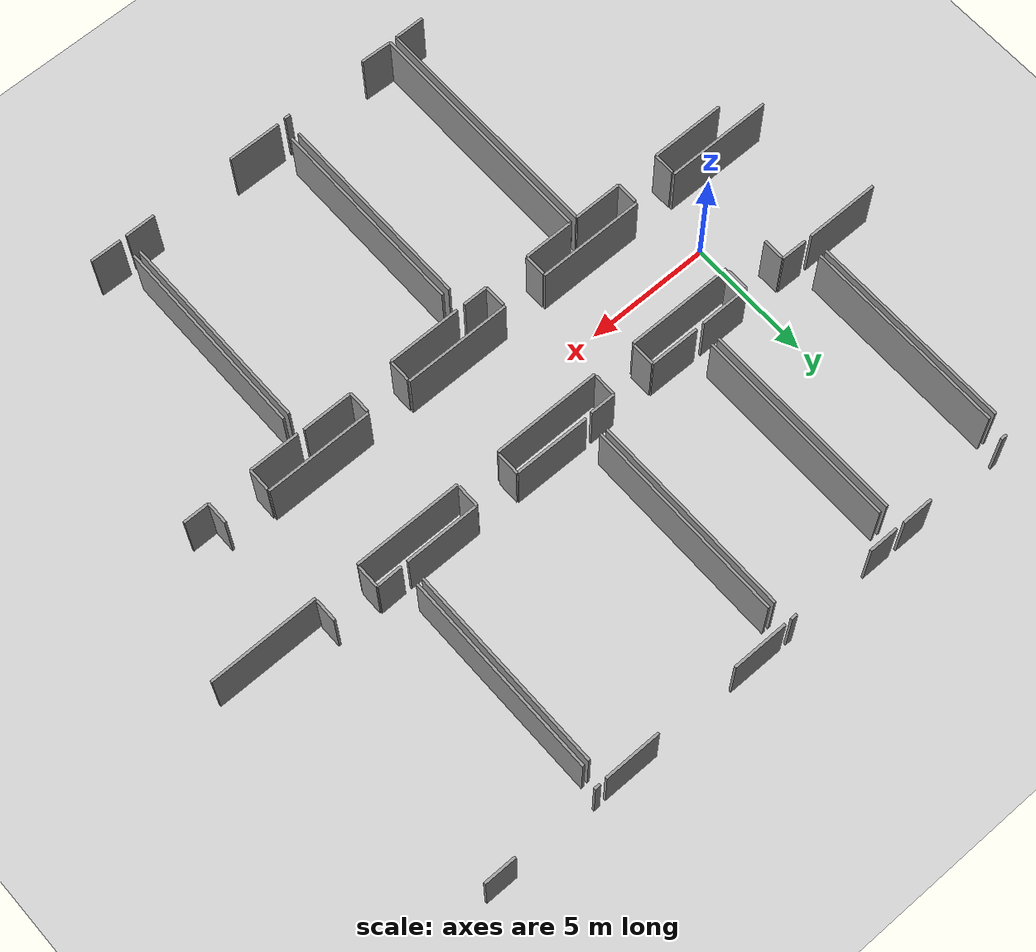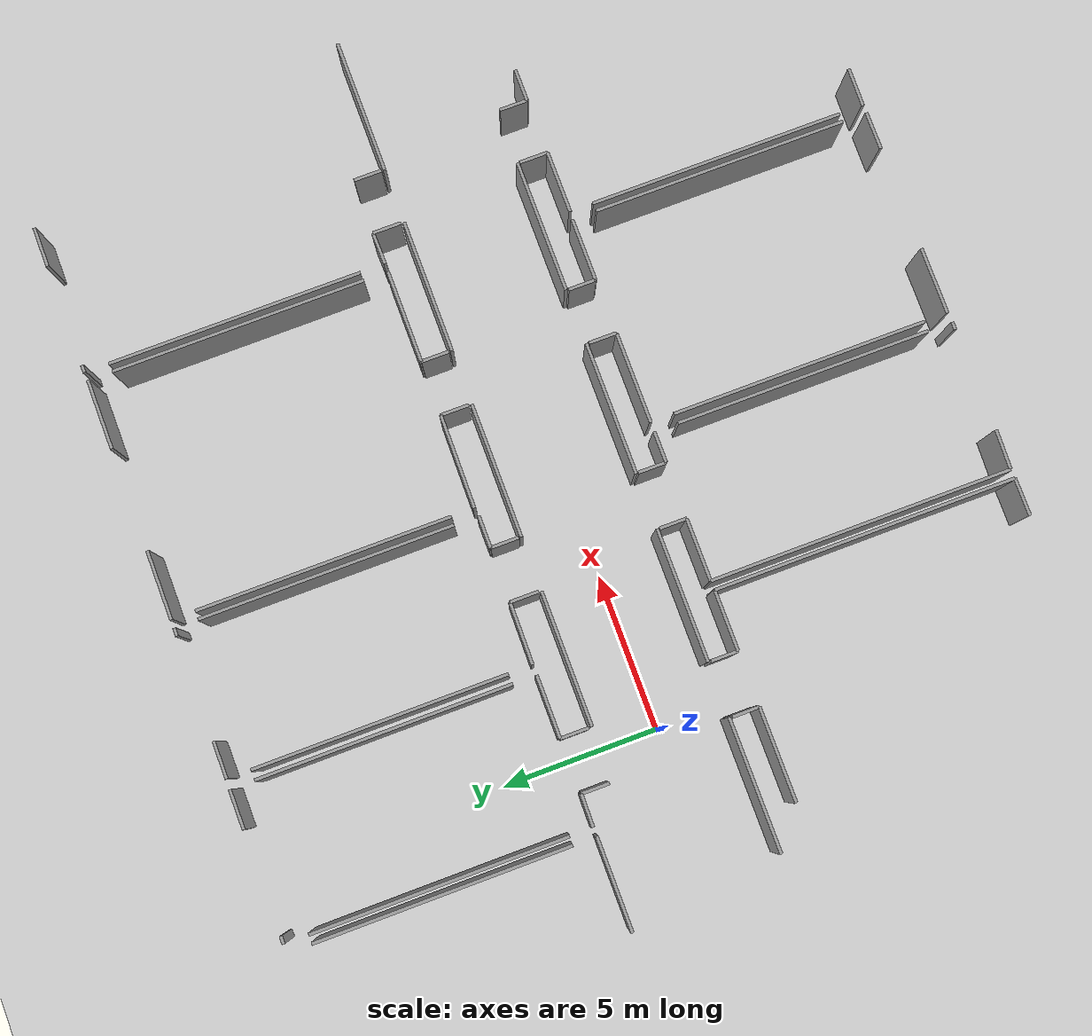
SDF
<sdf version="1.6">
 <world name="default">
  <model name="ground_plane">
   <static>1</static>
   <link name="link">
    <collision name="collision">
     <geometry><plane><normal>0 0 1</normal><size>100 100</size></plane></geometry>
     <surface><friction><ode><mu>100</mu><mu2>50</mu2></ode></friction></surface>
    </collision>
    <visual name="visual">
     <cast_shadows>0</cast_shadows>
     <geometry><plane><normal>0 0 1</normal><size>100 100</size></plane></geometry>
     <material>
      <script><uri>file://media/materials/scripts/gazebo.material</uri><name>Gazebo/Grey</name></script>
     </material>
    </visual>
   </link>
  </model>
  <model name="50052753">
   <static>1</static>
   <link name="Wall_114">
    <collision name="Wall_114_Collision">
     <geometry><box><size>8.09257720581 0.1 2.5</size></box></geometry>
     <pose>4.04628860291 0 1.25 0 0 0</pose>
    </collision>
    <visual name="Wall_114_Visual">
     <pose>4.04628860291 0 1.25 0 0 0</pose>
     <geometry><box><size>8.09257720581 0.1 2.5</size></box></geometry>
     <material>
      <script><uri>file://media/materials/scripts/gazebo.material</uri><name>Gazebo/Grey</name></script>
      <ambient>1 1 1 1</ambient>
     </material>
    </visual>
    <pose>36.7334124049 -0.778242200136 0 0 0 -1.57079632679</pose>
   </link>
   <link name="Wall_115">
    <collision name="Wall_115_Collision">
     <geometry><box><size>2.95123142399 0.1 2.5</size></box></geometry>
     <pose>1.47561571199 0 1.25 0 0 0</pose>
    </collision>
    <visual name="Wall_115_Visual">
     <pose>1.47561571199 0 1.25 0 0 0</pose>
     <geometry><box><size>2.95123142399 0.1 2.5</size></box></geometry>
     <material>
      <script><uri>file://media/materials/scripts/gazebo.material</uri><name>Gazebo/Grey</name></script>
      <ambient>1 1 1 1</ambient>
     </material>
    </visual>
    <pose>36.7334124049 -9.61899748197 0 0 0 3.14159265359</pose>
   </link>
   <link name="Wall_119">
    <collision name="Wall_119_Collision">
     <geometry><box><size>8.09752446674 0.1 2.5</size></box></geometry>
     <pose>4.04876223337 0 1.25 0 0 0</pose>
    </collision>
    <visual name="Wall_119_Visual">
     <pose>4.04876223337 0 1.25 0 0 0</pose>
     <geometry><box><size>8.09752446674 0.1 2.5</size></box></geometry>
     <material>
      <script><uri>file://media/materials/scripts/gazebo.material</uri><name>Gazebo/Grey</name></script>
      <ambient>1 1 1 1</ambient>
     </material>
    </visual>
    <pose>37.0086830772 -8.87716204817 0 0 0 1.57079632679</pose>
   </link>
   <link name="Wall_120">
    <collision name="Wall_120_Collision">
     <geometry><box><size>0.247616752187 0.1 2.5</size></box></geometry>
     <pose>0.123808376093 0 1.25 0 0 0</pose>
    </collision>
    <visual name="Wall_120_Visual">
     <pose>0.123808376093 0 1.25 0 0 0</pose>
     <geometry><box><size>0.247616752187 0.1 2.5</size></box></geometry>
     <material>
      <script><uri>file://media/materials/scripts/gazebo.material</uri><name>Gazebo/Grey</name></script>
      <ambient>1 1 1 1</ambient>
     </material>
    </visual>
    <pose>37.0086830772 -0.0109093446148 0 0 0 0.0</pose>
   </link>
   <link name="Wall_121">
    <collision name="Wall_121_Collision">
     <geometry><box><size>1.24747087142 0.1 2.5</size></box></geometry>
     <pose>0.623735435708 0 1.25 0 0 0</pose>
    </collision>
    <visual name="Wall_121_Visual">
     <pose>0.623735435708 0 1.25 0 0 0</pose>
     <geometry><box><size>1.24747087142 0.1 2.5</size></box></geometry>
     <material>
      <script><uri>file://media/materials/scripts/gazebo.material</uri><name>Gazebo/Grey</name></script>
      <ambient>1 1 1 1</ambient>
     </material>
    </visual>
    <pose>40.4984048255 -0.0109093446148 0 0 0 0.0</pose>
   </link>
   <link name="Wall_122">
    <collision name="Wall_122_Collision">
     <geometry><box><size>8.07240760356 0.1 2.5</size></box></geometry>
     <pose>4.03620380178 0 1.25 0 0 0</pose>
    </collision>
    <visual name="Wall_122_Visual">
     <pose>4.03620380178 0 1.25 0 0 0</pose>
     <geometry><box><size>8.07240760356 0.1 2.5</size></box></geometry>
     <material>
      <script><uri>file://media/materials/scripts/gazebo.material</uri><name>Gazebo/Grey</name></script>
      <ambient>1 1 1 1</ambient>
     </material>
    </visual>
    <pose>41.7458756969 -0.779637581424 0 0 0 -1.57079632679</pose>
   </link>
   <link name="Wall_123">
    <collision name="Wall_123_Collision">
     <geometry><box><size>1.98626183696 0.1 2.5</size></box></geometry>
     <pose>0.993130918478 0 1.25 0 0 0</pose>
    </collision>
    <visual name="Wall_123_Visual">
     <pose>0.993130918478 0 1.25 0 0 0</pose>
     <geometry><box><size>1.98626183696 0.1 2.5</size></box></geometry>
     <material>
      <script><uri>file://media/materials/scripts/gazebo.material</uri><name>Gazebo/Grey</name></script>
      <ambient>1 1 1 1</ambient>
     </material>
    </visual>
    <pose>41.7458756969 -9.60643905038 0 0 0 3.14159265359</pose>
   </link>
   <link name="Wall_124">
    <collision name="Wall_124_Collision">
     <geometry><box><size>0.903953368894 0.1 2.5</size></box></geometry>
     <pose>0.451976684447 0 1.25 0 0 0</pose>
    </collision>
    <visual name="Wall_124_Visual">
     <pose>0.451976684447 0 1.25 0 0 0</pose>
     <geometry><box><size>0.903953368894 0.1 2.5</size></box></geometry>
     <material>
      <script><uri>file://media/materials/scripts/gazebo.material</uri><name>Gazebo/Grey</name></script>
      <ambient>1 1 1 1</ambient>
     </material>
    </visual>
    <pose>39.7596138599 -9.60643905038 0 0 0 -1.57079632679</pose>
   </link>
   <link name="Wall_125">
    <collision name="Wall_125_Collision">
     <geometry><box><size>0.884671736552 0.1 2.5</size></box></geometry>
     <pose>0.442335868276 0 1.25 0 0 0</pose>
    </collision>
    <visual name="Wall_125_Visual">
     <pose>0.442335868276 0 1.25 0 0 0</pose>
     <geometry><box><size>0.884671736552 0.1 2.5</size></box></geometry>
     <material>
      <script><uri>file://media/materials/scripts/gazebo.material</uri><name>Gazebo/Grey</name></script>
      <ambient>1 1 1 1</ambient>
     </material>
    </visual>
    <pose>38.0438022872 -10.5103924193 0 0 0 1.57079632679</pose>
   </link>
   <link name="Wall_126">
    <collision name="Wall_126_Collision">
     <geometry><box><size>1.03522200074 0.1 2.5</size></box></geometry>
     <pose>0.517611000372 0 1.25 0 0 0</pose>
    </collision>
    <visual name="Wall_126_Visual">
     <pose>0.517611000372 0 1.25 0 0 0</pose>
     <geometry><box><size>1.03522200074 0.1 2.5</size></box></geometry>
     <material>
      <script><uri>file://media/materials/scripts/gazebo.material</uri><name>Gazebo/Grey</name></script>
      <ambient>1 1 1 1</ambient>
     </material>
    </visual>
    <pose>38.0438022872 -9.62572068272 0 0 0 3.12750044927</pose>
   </link>
   <link name="Wall_127">
    <collision name="Wall_127_Collision">
     <geometry><box><size>8.07012425236 0.1 2.5</size></box></geometry>
     <pose>4.03506212618 0 1.25 0 0 0</pose>
    </collision>
    <visual name="Wall_127_Visual">
     <pose>4.03506212618 0 1.25 0 0 0</pose>
     <geometry><box><size>8.07012425236 0.1 2.5</size></box></geometry>
     <material>
      <script><uri>file://media/materials/scripts/gazebo.material</uri><name>Gazebo/Grey</name></script>
      <ambient>1 1 1 1</ambient>
     </material>
    </visual>
    <pose>42.0649106005 -8.84202381028 0 0 0 1.57079632679</pose>
   </link>
   <link name="Wall_128">
    <collision name="Wall_128_Collision">
     <geometry><box><size>1.17503789729 0.1 2.5</size></box></geometry>
     <pose>0.587518948644 0 1.25 0 0 0</pose>
    </collision>
    <visual name="Wall_128_Visual">
     <pose>0.587518948644 0 1.25 0 0 0</pose>
     <geometry><box><size>1.17503789729 0.1 2.5</size></box></geometry>
     <material>
      <script><uri>file://media/materials/scripts/gazebo.material</uri><name>Gazebo/Grey</name></script>
      <ambient>1 1 1 1</ambient>
     </material>
    </visual>
    <pose>42.0649106005 -0.0279076257587 0 0 0 0.0</pose>
   </link>
   <link name="Wall_129">
    <collision name="Wall_129_Collision">
     <geometry><box><size>0.25383254156 0.1 2.5</size></box></geometry>
     <pose>0.12691627078 0 1.25 0 0 0</pose>
    </collision>
    <visual name="Wall_129_Visual">
     <pose>0.12691627078 0 1.25 0 0 0</pose>
     <geometry><box><size>0.25383254156 0.1 2.5</size></box></geometry>
     <material>
      <script><uri>file://media/materials/scripts/gazebo.material</uri><name>Gazebo/Grey</name></script>
      <ambient>1 1 1 1</ambient>
     </material>
    </visual>
    <pose>46.5255640195 -0.0279076257587 0 0 0 0.0</pose>
   </link>
   <link name="Wall_130">
    <collision name="Wall_130_Collision">
     <geometry><box><size>8.07963821569 0.1 2.5</size></box></geometry>
     <pose>4.03981910784 0 1.25 0 0 0</pose>
    </collision>
    <visual name="Wall_130_Visual">
     <pose>4.03981910784 0 1.25 0 0 0</pose>
     <geometry><box><size>8.07963821569 0.1 2.5</size></box></geometry>
     <material>
      <script><uri>file://media/materials/scripts/gazebo.material</uri><name>Gazebo/Grey</name></script>
      <ambient>1 1 1 1</ambient>
     </material>
    </visual>
    <pose>46.779396561 -0.772406969295 0 0 0 -1.57079632679</pose>
   </link>
   <link name="Wall_131">
    <collision name="Wall_131_Collision">
     <geometry><box><size>1.02129224993 0.1 2.5</size></box></geometry>
     <pose>0.510646124963 0 1.25 0 0 0</pose>
    </collision>
    <visual name="Wall_131_Visual">
     <pose>0.510646124963 0 1.25 0 0 0</pose>
     <geometry><box><size>1.02129224993 0.1 2.5</size></box></geometry>
     <material>
      <script><uri>file://media/materials/scripts/gazebo.material</uri><name>Gazebo/Grey</name></script>
      <ambient>1 1 1 1</ambient>
     </material>
    </visual>
    <pose>46.779396561 -9.63612261596 0 0 0 3.14159265359</pose>
   </link>
   <link name="Wall_132">
    <collision name="Wall_132_Collision">
     <geometry><box><size>0.892409760058 0.1 2.5</size></box></geometry>
     <pose>0.446204880029 0 1.25 0 0 0</pose>
    </collision>
    <visual name="Wall_132_Visual">
     <pose>0.446204880029 0 1.25 0 0 0</pose>
     <geometry><box><size>0.892409760058 0.1 2.5</size></box></geometry>
     <material>
      <script><uri>file://media/materials/scripts/gazebo.material</uri><name>Gazebo/Grey</name></script>
      <ambient>1 1 1 1</ambient>
     </material>
    </visual>
    <pose>45.7581043111 -9.63612261596 0 0 0 -1.57079632679</pose>
   </link>
   <link name="Wall_133">
    <collision name="Wall_133_Collision">
     <geometry><box><size>0.909534894046 0.1 2.5</size></box></geometry>
     <pose>0.454767447023 0 1.25 0 0 0</pose>
    </collision>
    <visual name="Wall_133_Visual">
     <pose>0.454767447023 0 1.25 0 0 0</pose>
     <geometry><box><size>0.909534894046 0.1 2.5</size></box></geometry>
     <material>
      <script><uri>file://media/materials/scripts/gazebo.material</uri><name>Gazebo/Grey</name></script>
      <ambient>1 1 1 1</ambient>
     </material>
    </visual>
    <pose>44.0407705042 -10.528532376 0 0 0 1.57079632679</pose>
   </link>
   <link name="Wall_134">
    <collision name="Wall_134_Collision">
     <geometry><box><size>1.9759527486 0.1 2.5</size></box></geometry>
     <pose>0.9879763743 0 1.25 0 0 0</pose>
    </collision>
    <visual name="Wall_134_Visual">
     <pose>0.9879763743 0 1.25 0 0 0</pose>
     <geometry><box><size>1.9759527486 0.1 2.5</size></box></geometry>
     <material>
      <script><uri>file://media/materials/scripts/gazebo.material</uri><name>Gazebo/Grey</name></script>
      <ambient>1 1 1 1</ambient>
     </material>
    </visual>
    <pose>44.0407705042 -9.61899748197 0 0 0 3.13189855563</pose>
   </link>
   <link name="Wall_135">
    <collision name="Wall_135_Collision">
     <geometry><box><size>8.09346517572 0.1 2.5</size></box></geometry>
     <pose>4.04673258786 0 1.25 0 0 0</pose>
    </collision>
    <visual name="Wall_135_Visual">
     <pose>4.04673258786 0 1.25 0 0 0</pose>
     <geometry><box><size>8.09346517572 0.1 2.5</size></box></geometry>
     <material>
      <script><uri>file://media/materials/scripts/gazebo.material</uri><name>Gazebo/Grey</name></script>
      <ambient>1 1 1 1</ambient>
     </material>
    </visual>
    <pose>47.0426162131 -8.86878976044 0 0 0 1.57079632679</pose>
   </link>
   <link name="Wall_136">
    <collision name="Wall_136_Collision">
     <geometry><box><size>2.19366623748 0.1 2.5</size></box></geometry>
     <pose>1.09683311874 0 1.25 0 0 0</pose>
    </collision>
    <visual name="Wall_136_Visual">
     <pose>1.09683311874 0 1.25 0 0 0</pose>
     <geometry><box><size>2.19366623748 0.1 2.5</size></box></geometry>
     <material>
      <script><uri>file://media/materials/scripts/gazebo.material</uri><name>Gazebo/Grey</name></script>
      <ambient>1 1 1 1</ambient>
     </material>
    </visual>
    <pose>47.0426162131 -0.0275270672257 0 0 0 0.0</pose>
   </link>
   <link name="Wall_137">
    <collision name="Wall_137_Collision">
     <geometry><box><size>2.22626741848 0.1 2.5</size></box></geometry>
     <pose>1.11313370924 0 1.25 0 0 0</pose>
    </collision>
    <visual name="Wall_137_Visual">
     <pose>1.11313370924 0 1.25 0 0 0</pose>
     <geometry><box><size>2.22626741848 0.1 2.5</size></box></geometry>
     <material>
      <script><uri>file://media/materials/scripts/gazebo.material</uri><name>Gazebo/Grey</name></script>
      <ambient>1 1 1 1</ambient>
     </material>
    </visual>
    <pose>52.5037580155 -0.0275270672257 0 0 0 0.0</pose>
   </link>
   <link name="Wall_138">
    <collision name="Wall_138_Collision">
     <geometry><box><size>8.05388708828 0.1 2.5</size></box></geometry>
     <pose>4.02694354414 0 1.25 0 0 0</pose>
    </collision>
    <visual name="Wall_138_Visual">
     <pose>4.02694354414 0 1.25 0 0 0</pose>
     <geometry><box><size>8.05388708828 0.1 2.5</size></box></geometry>
     <material>
      <script><uri>file://media/materials/scripts/gazebo.material</uri><name>Gazebo/Grey</name></script>
      <ambient>1 1 1 1</ambient>
     </material>
    </visual>
    <pose>54.730025434 -0.796635862568 0 0 0 -1.57079632679</pose>
   </link>
   <link name="Wall_139">
    <collision name="Wall_139_Collision">
     <geometry><box><size>2.95782777189 0.1 2.5</size></box></geometry>
     <pose>1.47891388595 0 1.25 0 0 0</pose>
    </collision>
    <visual name="Wall_139_Visual">
     <pose>1.47891388595 0 1.25 0 0 0</pose>
     <geometry><box><size>2.95782777189 0.1 2.5</size></box></geometry>
     <material>
      <script><uri>file://media/materials/scripts/gazebo.material</uri><name>Gazebo/Grey</name></script>
      <ambient>1 1 1 1</ambient>
     </material>
    </visual>
    <pose>54.730025434 -9.6262280941 0 0 0 3.14159265359</pose>
   </link>
   <link name="Wall_140">
    <collision name="Wall_140_Collision">
     <geometry><box><size>0.889238438949 0.1 2.5</size></box></geometry>
     <pose>0.444619219474 0 1.25 0 0 0</pose>
    </collision>
    <visual name="Wall_140_Visual">
     <pose>0.444619219474 0 1.25 0 0 0</pose>
     <geometry><box><size>0.889238438949 0.1 2.5</size></box></geometry>
     <material>
      <script><uri>file://media/materials/scripts/gazebo.material</uri><name>Gazebo/Grey</name></script>
      <ambient>1 1 1 1</ambient>
     </material>
    </visual>
    <pose>51.7721976621 -9.6262280941 0 0 0 -1.57079632679</pose>
   </link>
   <link name="Wall_141">
    <collision name="Wall_141_Collision">
     <geometry><box><size>0.895200522634 0.1 2.5</size></box></geometry>
     <pose>0.447600261317 0 1.25 0 0 0</pose>
    </collision>
    <visual name="Wall_141_Visual">
     <pose>0.447600261317 0 1.25 0 0 0</pose>
     <geometry><box><size>0.895200522634 0.1 2.5</size></box></geometry>
     <material>
      <script><uri>file://media/materials/scripts/gazebo.material</uri><name>Gazebo/Grey</name></script>
      <ambient>1 1 1 1</ambient>
     </material>
    </visual>
    <pose>50.0322840489 -10.515466533 0 0 0 1.57079632679</pose>
   </link>
   <link name="Wall_142">
    <collision name="Wall_142_Collision">
     <geometry><box><size>2.9897798311 0.1 2.5</size></box></geometry>
     <pose>1.49488991555 0 1.25 0 0 0</pose>
    </collision>
    <visual name="Wall_142_Visual">
     <pose>1.49488991555 0 1.25 0 0 0</pose>
     <geometry><box><size>2.9897798311 0.1 2.5</size></box></geometry>
     <material>
      <script><uri>file://media/materials/scripts/gazebo.material</uri><name>Gazebo/Grey</name></script>
      <ambient>1 1 1 1</ambient>
     </material>
    </visual>
    <pose>50.0322840489 -9.62026601041 0 0 0 3.13293706527</pose>
   </link>
   <link name="Wall_143">
    <collision name="Wall_143_Collision">
     <geometry><box><size>8.05858064352 0.1 2.5</size></box></geometry>
     <pose>4.02929032176 0 1.25 0 0 0</pose>
    </collision>
    <visual name="Wall_143_Visual">
     <pose>4.02929032176 0 1.25 0 0 0</pose>
     <geometry><box><size>8.05858064352 0.1 2.5</size></box></geometry>
     <material>
      <script><uri>file://media/materials/scripts/gazebo.material</uri><name>Gazebo/Grey</name></script>
      <ambient>1 1 1 1</ambient>
     </material>
    </visual>
    <pose>54.9889320893 -8.83390522824 0 0 0 1.57079632679</pose>
   </link>
   <link name="Wall_144">
    <collision name="Wall_144_Collision">
     <geometry><box><size>0.239371317303 0.1 2.5</size></box></geometry>
     <pose>0.119685658652 0 1.25 0 0 0</pose>
    </collision>
    <visual name="Wall_144_Visual">
     <pose>0.119685658652 0 1.25 0 0 0</pose>
     <geometry><box><size>0.239371317303 0.1 2.5</size></box></geometry>
     <material>
      <script><uri>file://media/materials/scripts/gazebo.material</uri><name>Gazebo/Grey</name></script>
      <ambient>1 1 1 1</ambient>
     </material>
    </visual>
    <pose>54.9889320893 -0.00799172919455 0 0 0 0.0</pose>
   </link>
   <link name="Wall_145">
    <collision name="Wall_145_Collision">
     <geometry><box><size>1.26764047367 0.1 2.5</size></box></geometry>
     <pose>0.633820236834 0 1.25 0 0 0</pose>
    </collision>
    <visual name="Wall_145_Visual">
     <pose>0.633820236834 0 1.25 0 0 0</pose>
     <geometry><box><size>1.26764047367 0.1 2.5</size></box></geometry>
     <material>
      <script><uri>file://media/materials/scripts/gazebo.material</uri><name>Gazebo/Grey</name></script>
      <ambient>1 1 1 1</ambient>
     </material>
    </visual>
    <pose>58.4763704864 -0.00799172919455 0 0 0 0.0</pose>
   </link>
   <link name="Wall_148">
    <collision name="Wall_148_Collision">
     <geometry><box><size>0.892029201525 0.1 2.5</size></box></geometry>
     <pose>0.446014600762 0 1.25 0 0 0</pose>
    </collision>
    <visual name="Wall_148_Visual">
     <pose>0.446014600762 0 1.25 0 0 0</pose>
     <geometry><box><size>0.892029201525 0.1 2.5</size></box></geometry>
     <material>
      <script><uri>file://media/materials/scripts/gazebo.material</uri><name>Gazebo/Grey</name></script>
      <ambient>1 1 1 1</ambient>
     </material>
    </visual>
    <pose>57.7673899393 -9.62090027464 0 0 0 -1.57079632679</pose>
   </link>
   <link name="Wall_149">
    <collision name="Wall_149_Collision">
     <geometry><box><size>0.903699663206 0.1 2.5</size></box></geometry>
     <pose>0.451849831603 0 1.25 0 0 0</pose>
    </collision>
    <visual name="Wall_149_Visual">
     <pose>0.451849831603 0 1.25 0 0 0</pose>
     <geometry><box><size>0.903699663206 0.1 2.5</size></box></geometry>
     <material>
      <script><uri>file://media/materials/scripts/gazebo.material</uri><name>Gazebo/Grey</name></script>
      <ambient>1 1 1 1</ambient>
     </material>
    </visual>
    <pose>56.0155521587 -10.5129294762 0 0 0 1.57079632679</pose>
   </link>
   <link name="Wall_150">
    <collision name="Wall_150_Collision">
     <geometry><box><size>1.02679404822 0.1 2.5</size></box></geometry>
     <pose>0.513397024111 0 1.25 0 0 0</pose>
    </collision>
    <visual name="Wall_150_Visual">
     <pose>0.513397024111 0 1.25 0 0 0</pose>
     <geometry><box><size>1.02679404822 0.1 2.5</size></box></geometry>
     <material>
      <script><uri>file://media/materials/scripts/gazebo.material</uri><name>Gazebo/Grey</name></script>
      <ambient>1 1 1 1</ambient>
     </material>
    </visual>
    <pose>56.0155521587 -9.60922981296 0 0 0 -3.12318376094</pose>
   </link>
   <link name="Wall_206">
    <collision name="Wall_206_Collision">
     <geometry><box><size>8.08217527258 0.1 2.5</size></box></geometry>
     <pose>4.04108763629 0 1.25 0 0 0</pose>
    </collision>
    <visual name="Wall_206_Visual">
     <pose>4.04108763629 0 1.25 0 0 0</pose>
     <geometry><box><size>8.08217527258 0.1 2.5</size></box></geometry>
     <material>
      <script><uri>file://media/materials/scripts/gazebo.material</uri><name>Gazebo/Grey</name></script>
      <ambient>1 1 1 1</ambient>
     </material>
    </visual>
    <pose>54.5576324185 -24.2741797378 0 0 0 1.57079632679</pose>
   </link>
   <link name="Wall_207">
    <collision name="Wall_207_Collision">
     <geometry><box><size>1.97674787363 0.1 2.5</size></box></geometry>
     <pose>0.988373936815 0 1.25 0 0 0</pose>
    </collision>
    <visual name="Wall_207_Visual">
     <pose>0.988373936815 0 1.25 0 0 0</pose>
     <geometry><box><size>1.97674787363 0.1 2.5</size></box></geometry>
     <material>
      <script><uri>file://media/materials/scripts/gazebo.material</uri><name>Gazebo/Grey</name></script>
      <ambient>1 1 1 1</ambient>
     </material>
    </visual>
    <pose>54.5576324185 -15.4594292891 0 0 0 0.0</pose>
   </link>
   <link name="Wall_208">
    <collision name="Wall_208_Collision">
     <geometry><box><size>0.899386666498 0.1 2.5</size></box></geometry>
     <pose>0.449693333249 0 1.25 0 0 0</pose>
    </collision>
    <visual name="Wall_208_Visual">
     <pose>0.449693333249 0 1.25 0 0 0</pose>
     <geometry><box><size>0.899386666498 0.1 2.5</size></box></geometry>
     <material>
      <script><uri>file://media/materials/scripts/gazebo.material</uri><name>Gazebo/Grey</name></script>
      <ambient>1 1 1 1</ambient>
     </material>
    </visual>
    <pose>56.5343802921 -15.4594292891 0 0 0 1.57079632679</pose>
   </link>
   <link name="Wall_209">
    <collision name="Wall_209_Collision">
     <geometry><box><size>0.885052295085 0.1 2.5</size></box></geometry>
     <pose>0.442526147543 0 1.25 0 0 0</pose>
    </collision>
    <visual name="Wall_209_Visual">
     <pose>0.442526147543 0 1.25 0 0 0</pose>
     <geometry><box><size>0.885052295085 0.1 2.5</size></box></geometry>
     <material>
      <script><uri>file://media/materials/scripts/gazebo.material</uri><name>Gazebo/Grey</name></script>
      <ambient>1 1 1 1</ambient>
     </material>
    </visual>
    <pose>58.3001718856 -14.5600426226 0 0 0 -1.57079632679</pose>
   </link>
   <link name="Wall_210">
    <collision name="Wall_210_Collision">
     <geometry><box><size>1.0275080393 0.1 2.5</size></box></geometry>
     <pose>0.51375401965 0 1.25 0 0 0</pose>
    </collision>
    <visual name="Wall_210_Visual">
     <pose>0.51375401965 0 1.25 0 0 0</pose>
     <geometry><box><size>1.0275080393 0.1 2.5</size></box></geometry>
     <material>
      <script><uri>file://media/materials/scripts/gazebo.material</uri><name>Gazebo/Grey</name></script>
      <ambient>1 1 1 1</ambient>
     </material>
    </visual>
    <pose>58.3001718856 -15.4450949176 0 0 0 0.0</pose>
   </link>
   <link name="Wall_213">
    <collision name="Wall_213_Collision">
     <geometry><box><size>1.22975846308 0.1 2.5</size></box></geometry>
     <pose>0.614879231541 0 1.25 0 0 0</pose>
    </collision>
    <visual name="Wall_213_Visual">
     <pose>0.614879231541 0 1.25 0 0 0</pose>
     <geometry><box><size>1.22975846308 0.1 2.5</size></box></geometry>
     <material>
      <script><uri>file://media/materials/scripts/gazebo.material</uri><name>Gazebo/Grey</name></script>
      <ambient>1 1 1 1</ambient>
     </material>
    </visual>
    <pose>55.7872170389 -25.0621896069 0 0 0 3.1247779793</pose>
   </link>
   <link name="Wall_214">
    <collision name="Wall_214_Collision">
     <geometry><box><size>8.10665787154 0.1 2.5</size></box></geometry>
     <pose>4.05332893577 0 1.25 0 0 0</pose>
    </collision>
    <visual name="Wall_214_Visual">
     <pose>4.05332893577 0 1.25 0 0 0</pose>
     <geometry><box><size>8.10665787154 0.1 2.5</size></box></geometry>
     <material>
      <script><uri>file://media/materials/scripts/gazebo.material</uri><name>Gazebo/Grey</name></script>
      <ambient>1 1 1 1</ambient>
     </material>
    </visual>
    <pose>47.6347652905 -24.3079225944 0 0 0 1.57079632679</pose>
   </link>
   <link name="Wall_215">
    <collision name="Wall_215_Collision">
     <geometry><box><size>2.91304871783 0.1 2.5</size></box></geometry>
     <pose>1.45652435892 0 1.25 0 0 0</pose>
    </collision>
    <visual name="Wall_215_Visual">
     <pose>1.45652435892 0 1.25 0 0 0</pose>
     <geometry><box><size>2.91304871783 0.1 2.5</size></box></geometry>
     <material>
      <script><uri>file://media/materials/scripts/gazebo.material</uri><name>Gazebo/Grey</name></script>
      <ambient>1 1 1 1</ambient>
     </material>
    </visual>
    <pose>47.6347652905 -15.4499153257 0 0 0 0.0</pose>
   </link>
   <link name="Wall_216">
    <collision name="Wall_216_Collision">
     <geometry><box><size>0.883910619486 0.1 2.5</size></box></geometry>
     <pose>0.441955309743 0 1.25 0 0 0</pose>
    </collision>
    <visual name="Wall_216_Visual">
     <pose>0.441955309743 0 1.25 0 0 0</pose>
     <geometry><box><size>0.883910619486 0.1 2.5</size></box></geometry>
     <material>
      <script><uri>file://media/materials/scripts/gazebo.material</uri><name>Gazebo/Grey</name></script>
      <ambient>1 1 1 1</ambient>
     </material>
    </visual>
    <pose>50.5478140084 -15.4499153257 0 0 0 1.57079632679</pose>
   </link>
   <link name="Wall_217">
    <collision name="Wall_217_Collision">
     <geometry><box><size>0.868815131007 0.1 2.5</size></box></geometry>
     <pose>0.434407565504 0 1.25 0 0 0</pose>
    </collision>
    <visual name="Wall_217_Visual">
     <pose>0.434407565504 0 1.25 0 0 0</pose>
     <geometry><box><size>0.868815131007 0.1 2.5</size></box></geometry>
     <material>
      <script><uri>file://media/materials/scripts/gazebo.material</uri><name>Gazebo/Grey</name></script>
      <ambient>1 1 1 1</ambient>
     </material>
    </visual>
    <pose>52.3024425515 -14.5660047062 0 0 0 -1.57079632679</pose>
   </link>
   <link name="Wall_218">
    <collision name="Wall_218_Collision">
     <geometry><box><size>2.00503605792 0.1 2.5</size></box></geometry>
     <pose>1.00251802896 0 1.25 0 0 0</pose>
    </collision>
    <visual name="Wall_218_Visual">
     <pose>1.00251802896 0 1.25 0 0 0</pose>
     <geometry><box><size>2.00503605792 0.1 2.5</size></box></geometry>
     <material>
      <script><uri>file://media/materials/scripts/gazebo.material</uri><name>Gazebo/Grey</name></script>
      <ambient>1 1 1 1</ambient>
     </material>
    </visual>
    <pose>52.3024425515 -15.4348198372 0 0 0 0.0</pose>
   </link>
   <link name="Wall_219">
    <collision name="Wall_219_Collision">
     <geometry><box><size>8.06910942961 0.1 2.5</size></box></geometry>
     <pose>4.0345547148 0 1.25 0 0 0</pose>
    </collision>
    <visual name="Wall_219_Visual">
     <pose>4.0345547148 0 1.25 0 0 0</pose>
     <geometry><box><size>8.06910942961 0.1 2.5</size></box></geometry>
     <material>
      <script><uri>file://media/materials/scripts/gazebo.material</uri><name>Gazebo/Grey</name></script>
      <ambient>1 1 1 1</ambient>
     </material>
    </visual>
    <pose>54.3074786094 -16.2105249805 0 0 0 -1.57079632679</pose>
   </link>
   <link name="Wall_220">
    <collision name="Wall_220_Collision">
     <geometry><box><size>1.20231125882 0.1 2.5</size></box></geometry>
     <pose>0.601155629412 0 1.25 0 0 0</pose>
    </collision>
    <visual name="Wall_220_Visual">
     <pose>0.601155629412 0 1.25 0 0 0</pose>
     <geometry><box><size>1.20231125882 0.1 2.5</size></box></geometry>
     <material>
      <script><uri>file://media/materials/scripts/gazebo.material</uri><name>Gazebo/Grey</name></script>
      <ambient>1 1 1 1</ambient>
     </material>
    </visual>
    <pose>54.3074786094 -25.0534367607 0 0 0 3.14159265359</pose>
   </link>
   <link name="Wall_221">
    <collision name="Wall_221_Collision">
     <geometry><box><size>2.13239927179 0.1 2.5</size></box></geometry>
     <pose>1.0661996359 0 1.25 0 0 0</pose>
    </collision>
    <visual name="Wall_221_Visual">
     <pose>1.0661996359 0 1.25 0 0 0</pose>
     <geometry><box><size>2.13239927179 0.1 2.5</size></box></geometry>
     <material>
      <script><uri>file://media/materials/scripts/gazebo.material</uri><name>Gazebo/Grey</name></script>
      <ambient>1 1 1 1</ambient>
     </material>
    </visual>
    <pose>49.7671616042 -25.0534367607 0 0 0 3.13992697994</pose>
   </link>
   <link name="Wall_222">
    <collision name="Wall_222_Collision">
     <geometry><box><size>9.6193780405 0.1 2.5</size></box></geometry>
     <pose>4.80968902025 0 1.25 0 0 0</pose>
    </collision>
    <visual name="Wall_222_Visual">
     <pose>4.80968902025 0 1.25 0 0 0</pose>
     <geometry><box><size>9.6193780405 0.1 2.5</size></box></geometry>
     <material>
      <script><uri>file://media/materials/scripts/gazebo.material</uri><name>Gazebo/Grey</name></script>
      <ambient>1 1 1 1</ambient>
     </material>
    </visual>
    <pose>42.5553236967 -25.0415125933 0 0 0 1.57079632679</pose>
   </link>
   <link name="Wall_223">
    <collision name="Wall_223_Collision">
     <geometry><box><size>1.99387300762 0.1 2.5</size></box></geometry>
     <pose>0.996936503809 0 1.25 0 0 0</pose>
    </collision>
    <visual name="Wall_223_Visual">
     <pose>0.996936503809 0 1.25 0 0 0</pose>
     <geometry><box><size>1.99387300762 0.1 2.5</size></box></geometry>
     <material>
      <script><uri>file://media/materials/scripts/gazebo.material</uri><name>Gazebo/Grey</name></script>
      <ambient>1 1 1 1</ambient>
     </material>
    </visual>
    <pose>42.5553236967 -15.4221345528 0 0 0 0.0</pose>
   </link>
   <link name="Wall_224">
    <collision name="Wall_224_Collision">
     <geometry><box><size>0.863233605856 0.1 2.5</size></box></geometry>
     <pose>0.431616802928 0 1.25 0 0 0</pose>
    </collision>
    <visual name="Wall_224_Visual">
     <pose>0.431616802928 0 1.25 0 0 0</pose>
     <geometry><box><size>0.863233605856 0.1 2.5</size></box></geometry>
     <material>
      <script><uri>file://media/materials/scripts/gazebo.material</uri><name>Gazebo/Grey</name></script>
      <ambient>1 1 1 1</ambient>
     </material>
    </visual>
    <pose>44.5491967044 -15.4221345528 0 0 0 1.57079632679</pose>
   </link>
   <link name="Wall_225">
    <collision name="Wall_225_Collision">
     <geometry><box><size>0.890760673081 0.1 2.5</size></box></geometry>
     <pose>0.445380336541 0 1.25 0 0 0</pose>
    </collision>
    <visual name="Wall_225_Visual">
     <pose>0.445380336541 0 1.25 0 0 0</pose>
     <geometry><box><size>0.890760673081 0.1 2.5</size></box></geometry>
     <material>
      <script><uri>file://media/materials/scripts/gazebo.material</uri><name>Gazebo/Grey</name></script>
      <ambient>1 1 1 1</ambient>
     </material>
    </visual>
    <pose>46.3420079537 -14.558900947 0 0 0 -1.57079632679</pose>
   </link>
   <link name="Wall_226">
    <collision name="Wall_226_Collision">
     <geometry><box><size>0.990086450213 0.1 2.5</size></box></geometry>
     <pose>0.495043225107 0 1.25 0 0 0</pose>
    </collision>
    <visual name="Wall_226_Visual">
     <pose>0.495043225107 0 1.25 0 0 0</pose>
     <geometry><box><size>0.990086450213 0.1 2.5</size></box></geometry>
     <material>
      <script><uri>file://media/materials/scripts/gazebo.material</uri><name>Gazebo/Grey</name></script>
      <ambient>1 1 1 1</ambient>
     </material>
    </visual>
    <pose>46.3420079537 -15.44966162 0 0 0 0.0</pose>
   </link>
   <link name="Wall_227">
    <collision name="Wall_227_Collision">
     <geometry><box><size>8.08407806524 0.1 2.5</size></box></geometry>
     <pose>4.04203903262 0 1.25 0 0 0</pose>
    </collision>
    <visual name="Wall_227_Visual">
     <pose>4.04203903262 0 1.25 0 0 0</pose>
     <geometry><box><size>8.08407806524 0.1 2.5</size></box></geometry>
     <material>
      <script><uri>file://media/materials/scripts/gazebo.material</uri><name>Gazebo/Grey</name></script>
      <ambient>1 1 1 1</ambient>
     </material>
    </visual>
    <pose>47.3320944039 -16.2105249805 0 0 0 -1.57079632679</pose>
   </link>
   <link name="Wall_228">
    <collision name="Wall_228_Collision">
     <geometry><box><size>0.250661220451 0.1 2.5</size></box></geometry>
     <pose>0.125330610226 0 1.25 0 0 0</pose>
    </collision>
    <visual name="Wall_228_Visual">
     <pose>0.125330610226 0 1.25 0 0 0</pose>
     <geometry><box><size>0.250661220451 0.1 2.5</size></box></geometry>
     <material>
      <script><uri>file://media/materials/scripts/gazebo.material</uri><name>Gazebo/Grey</name></script>
      <ambient>1 1 1 1</ambient>
     </material>
    </visual>
    <pose>47.3320944039 -25.0812175336 0 0 0 3.14159265359</pose>
   </link>
   <link name="Wall_229">
    <collision name="Wall_229_Collision">
     <geometry><box><size>1.26319052222 0.1 2.5</size></box></geometry>
     <pose>0.631595261109 0 1.25 0 0 0</pose>
    </collision>
    <visual name="Wall_229_Visual">
     <pose>0.631595261109 0 1.25 0 0 0</pose>
     <geometry><box><size>1.26319052222 0.1 2.5</size></box></geometry>
     <material>
      <script><uri>file://media/materials/scripts/gazebo.material</uri><name>Gazebo/Grey</name></script>
      <ambient>1 1 1 1</ambient>
     </material>
    </visual>
    <pose>43.8178900566 -25.0812175336 0 0 0 3.11015520968</pose>
   </link>
   <link name="Wall_231">
    <collision name="Wall_231_Collision">
     <geometry><box><size>1.20155014176 0.1 2.5</size></box></geometry>
     <pose>0.600775070879 0 1.25 0 0 0</pose>
    </collision>
    <visual name="Wall_231_Visual">
     <pose>0.600775070879 0 1.25 0 0 0</pose>
     <geometry><box><size>1.20155014176 0.1 2.5</size></box></geometry>
     <material>
      <script><uri>file://media/materials/scripts/gazebo.material</uri><name>Gazebo/Grey</name></script>
      <ambient>1 1 1 1</ambient>
     </material>
    </visual>
    <pose>41.0622657187 -25.0582571688 0 0 0 0.0</pose>
   </link>
   <link name="Wall_232">
    <collision name="Wall_232_Collision">
     <geometry><box><size>9.61925118766 0.1 2.5</size></box></geometry>
     <pose>4.80962559383 0 1.25 0 0 0</pose>
    </collision>
    <visual name="Wall_232_Visual">
     <pose>4.80962559383 0 1.25 0 0 0</pose>
     <geometry><box><size>9.61925118766 0.1 2.5</size></box></geometry>
     <material>
      <script><uri>file://media/materials/scripts/gazebo.material</uri><name>Gazebo/Grey</name></script>
      <ambient>1 1 1 1</ambient>
     </material>
    </visual>
    <pose>42.2638158604 -25.0582571688 0 0 0 1.57079632679</pose>
   </link>
   <link name="Wall_233">
    <collision name="Wall_233_Collision">
     <geometry><box><size>1.92752897002 0.1 2.5</size></box></geometry>
     <pose>0.963764485009 0 1.25 0 0 0</pose>
    </collision>
    <visual name="Wall_233_Visual">
     <pose>0.963764485009 0 1.25 0 0 0</pose>
     <geometry><box><size>1.92752897002 0.1 2.5</size></box></geometry>
     <material>
      <script><uri>file://media/materials/scripts/gazebo.material</uri><name>Gazebo/Grey</name></script>
      <ambient>1 1 1 1</ambient>
     </material>
    </visual>
    <pose>42.2638158604 -15.4390059811 0 0 0 3.14159265359</pose>
   </link>
   <link name="Wall_234">
    <collision name="Wall_234_Collision">
     <geometry><box><size>0.856256699416 0.1 2.5</size></box></geometry>
     <pose>0.428128349708 0 1.25 0 0 0</pose>
    </collision>
    <visual name="Wall_234_Visual">
     <pose>0.428128349708 0 1.25 0 0 0</pose>
     <geometry><box><size>0.856256699416 0.1 2.5</size></box></geometry>
     <material>
      <script><uri>file://media/materials/scripts/gazebo.material</uri><name>Gazebo/Grey</name></script>
      <ambient>1 1 1 1</ambient>
     </material>
    </visual>
    <pose>40.3362868904 -15.4390059811 0 0 0 1.57079632679</pose>
   </link>
   <link name="Wall_235">
    <collision name="Wall_235_Collision">
     <geometry><box><size>0.854861318128 0.1 2.5</size></box></geometry>
     <pose>0.427430659064 0 1.25 0 0 0</pose>
    </collision>
    <visual name="Wall_235_Visual">
     <pose>0.427430659064 0 1.25 0 0 0</pose>
     <geometry><box><size>0.854861318128 0.1 2.5</size></box></geometry>
     <material>
      <script><uri>file://media/materials/scripts/gazebo.material</uri><name>Gazebo/Grey</name></script>
      <ambient>1 1 1 1</ambient>
     </material>
    </visual>
    <pose>38.5909186049 -14.5827492817 0 0 0 -1.57079632679</pose>
   </link>
   <link name="Wall_236">
    <collision name="Wall_236_Collision">
     <geometry><box><size>2.98827245454 0.1 2.5</size></box></geometry>
     <pose>1.49413622727 0 1.25 0 0 0</pose>
    </collision>
    <visual name="Wall_236_Visual">
     <pose>1.49413622727 0 1.25 0 0 0</pose>
     <geometry><box><size>2.98827245454 0.1 2.5</size></box></geometry>
     <material>
      <script><uri>file://media/materials/scripts/gazebo.material</uri><name>Gazebo/Grey</name></script>
      <ambient>1 1 1 1</ambient>
     </material>
    </visual>
    <pose>38.5909186049 -15.4376105998 0 0 0 3.14159265359</pose>
   </link>
   <link name="Wall_251">
    <collision name="Wall_251_Collision">
     <geometry><box><size>4.24830175755 0.1 2.5</size></box></geometry>
     <pose>2.12415087877 0 1.25 0 0 0</pose>
    </collision>
    <visual name="Wall_251_Visual">
     <pose>2.12415087877 0 1.25 0 0 0</pose>
     <geometry><box><size>4.24830175755 0.1 2.5</size></box></geometry>
     <material>
      <script><uri>file://media/materials/scripts/gazebo.material</uri><name>Gazebo/Grey</name></script>
      <ambient>1 1 1 1</ambient>
     </material>
    </visual>
    <pose>39.7665907664 -10.6073079924 0 0 0 0.0</pose>
   </link>
   <link name="Wall_252">
    <collision name="Wall_252_Collision">
     <geometry><box><size>4.27430659064 0.1 2.5</size></box></geometry>
     <pose>2.13715329532 0 1.25 0 0 0</pose>
    </collision>
    <visual name="Wall_252_Visual">
     <pose>2.13715329532 0 1.25 0 0 0</pose>
     <geometry><box><size>4.27430659064 0.1 2.5</size></box></geometry>
     <material>
      <script><uri>file://media/materials/scripts/gazebo.material</uri><name>Gazebo/Grey</name></script>
      <ambient>1 1 1 1</ambient>
     </material>
    </visual>
    <pose>45.7383152674 -10.6073079924 0 0 0 0.0</pose>
   </link>
   <link name="Wall_253">
    <collision name="Wall_253_Collision">
     <geometry><box><size>4.23574332595 0.1 2.5</size></box></geometry>
     <pose>2.11787166298 0 1.25 0 0 0</pose>
    </collision>
    <visual name="Wall_253_Visual">
     <pose>2.11787166298 0 1.25 0 0 0</pose>
     <geometry><box><size>4.23574332595 0.1 2.5</size></box></geometry>
     <material>
      <script><uri>file://media/materials/scripts/gazebo.material</uri><name>Gazebo/Grey</name></script>
      <ambient>1 1 1 1</ambient>
     </material>
    </visual>
    <pose>51.7680115182 -10.6073079924 0 0 0 0.0</pose>
   </link>
   <link name="Wall_254">
    <collision name="Wall_254_Collision">
     <geometry><box><size>4.26834450695 0.1 2.5</size></box></geometry>
     <pose>2.13417225348 0 1.25 0 0 0</pose>
    </collision>
    <visual name="Wall_254_Visual">
     <pose>2.13417225348 0 1.25 0 0 0</pose>
     <geometry><box><size>4.26834450695 0.1 2.5</size></box></geometry>
     <material>
      <script><uri>file://media/materials/scripts/gazebo.material</uri><name>Gazebo/Grey</name></script>
      <ambient>1 1 1 1</ambient>
     </material>
    </visual>
    <pose>57.7476008956 -10.6073079924 0 0 0 0.0</pose>
   </link>
   <link name="Wall_262">
    <collision name="Wall_262_Collision">
     <geometry><box><size>4.22115524885 0.1 2.5</size></box></geometry>
     <pose>2.11057762443 0 1.25 0 0 0</pose>
    </collision>
    <visual name="Wall_262_Visual">
     <pose>2.11057762443 0 1.25 0 0 0</pose>
     <geometry><box><size>4.22115524885 0.1 2.5</size></box></geometry>
     <material>
      <script><uri>file://media/materials/scripts/gazebo.material</uri><name>Gazebo/Grey</name></script>
      <ambient>1 1 1 1</ambient>
     </material>
    </visual>
    <pose>56.5417377571 -14.490400411 0 0 0 3.14159265359</pose>
   </link>
   <link name="Wall_263">
    <collision name="Wall_263_Collision">
     <geometry><box><size>4.22876641952 0.1 2.5</size></box></geometry>
     <pose>2.11438320976 0 1.25 0 0 0</pose>
    </collision>
    <visual name="Wall_263_Visual">
     <pose>2.11438320976 0 1.25 0 0 0</pose>
     <geometry><box><size>4.22876641952 0.1 2.5</size></box></geometry>
     <material>
      <script><uri>file://media/materials/scripts/gazebo.material</uri><name>Gazebo/Grey</name></script>
      <ambient>1 1 1 1</ambient>
     </material>
    </visual>
    <pose>50.5624020855 -14.490400411 0 0 0 3.14159265359</pose>
   </link>
   <link name="Wall_264">
    <collision name="Wall_264_Collision">
     <geometry><box><size>4.23181088778 0.1 2.5</size></box></geometry>
     <pose>2.11590544389 0 1.25 0 0 0</pose>
    </collision>
    <visual name="Wall_264_Visual">
     <pose>2.11590544389 0 1.25 0 0 0</pose>
     <geometry><box><size>4.23181088778 0.1 2.5</size></box></geometry>
     <material>
      <script><uri>file://media/materials/scripts/gazebo.material</uri><name>Gazebo/Grey</name></script>
      <ambient>1 1 1 1</ambient>
     </material>
    </visual>
    <pose>44.5697468651 -14.490400411 0 0 0 3.14159265359</pose>
   </link>
   <link name="Wall_265">
    <collision name="Wall_265_Collision">
     <geometry><box><size>4.24145170395 0.1 2.5</size></box></geometry>
     <pose>2.12072585198 0 1.25 0 0 0</pose>
    </collision>
    <visual name="Wall_265_Visual">
     <pose>2.12072585198 0 1.25 0 0 0</pose>
     <geometry><box><size>4.24145170395 0.1 2.5</size></box></geometry>
     <material>
      <script><uri>file://media/materials/scripts/gazebo.material</uri><name>Gazebo/Grey</name></script>
      <ambient>1 1 1 1</ambient>
     </material>
    </visual>
    <pose>38.6184456721 -14.490400411 0 0 0 3.14159265359</pose>
   </link>
   <pose>-39.0 12.5312175336 0 0 0 0</pose>
  </model>
 </world>
</sdf>
